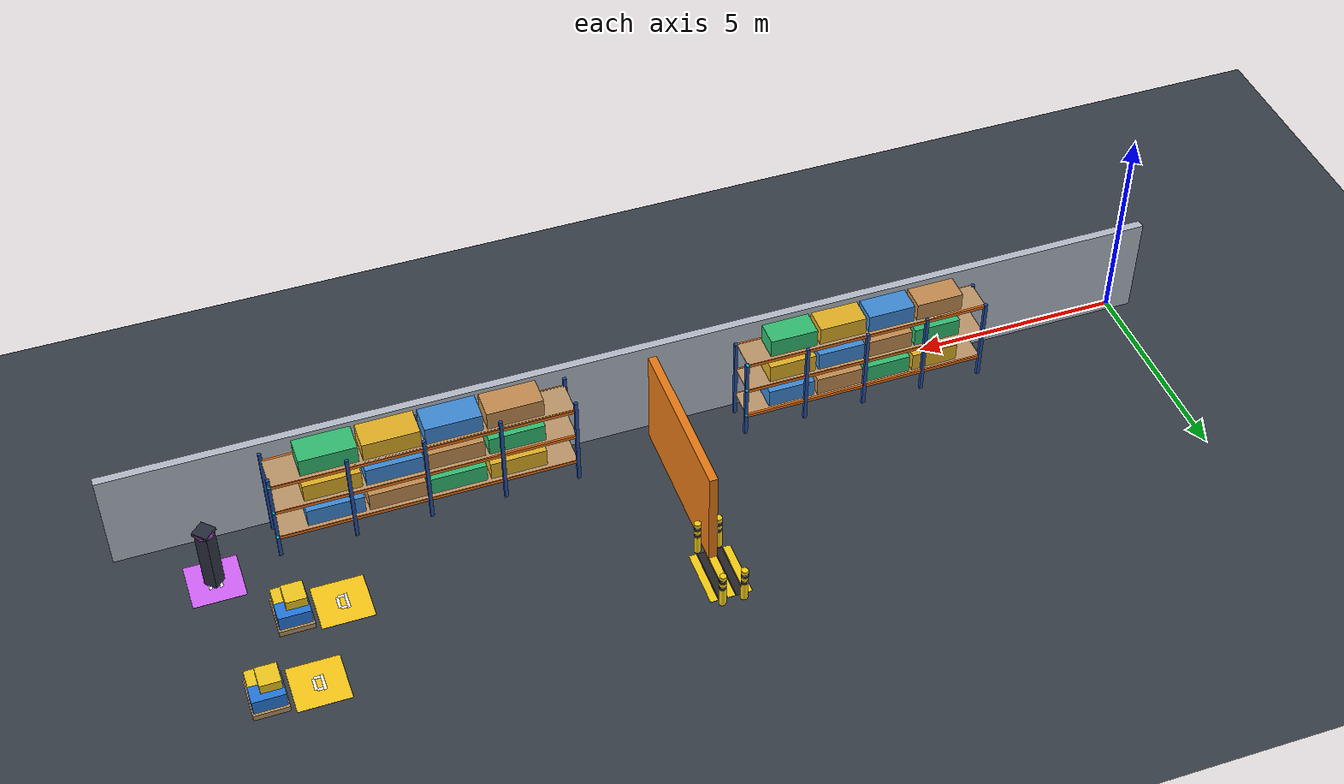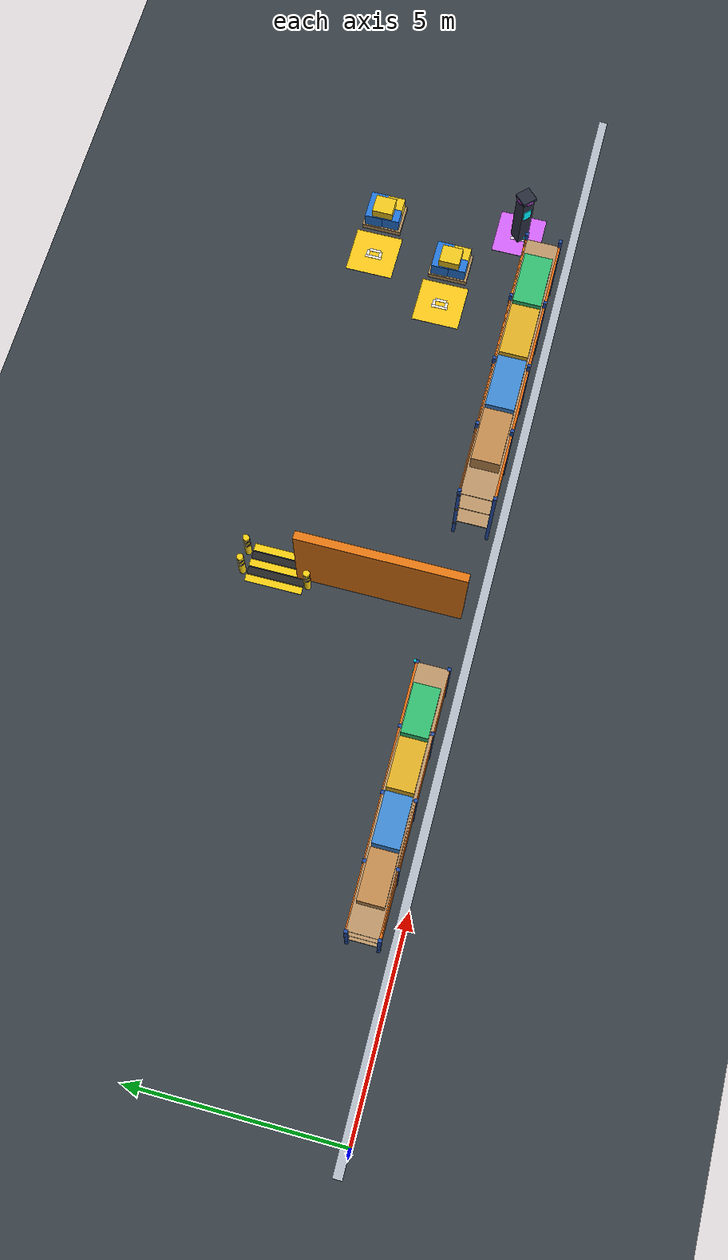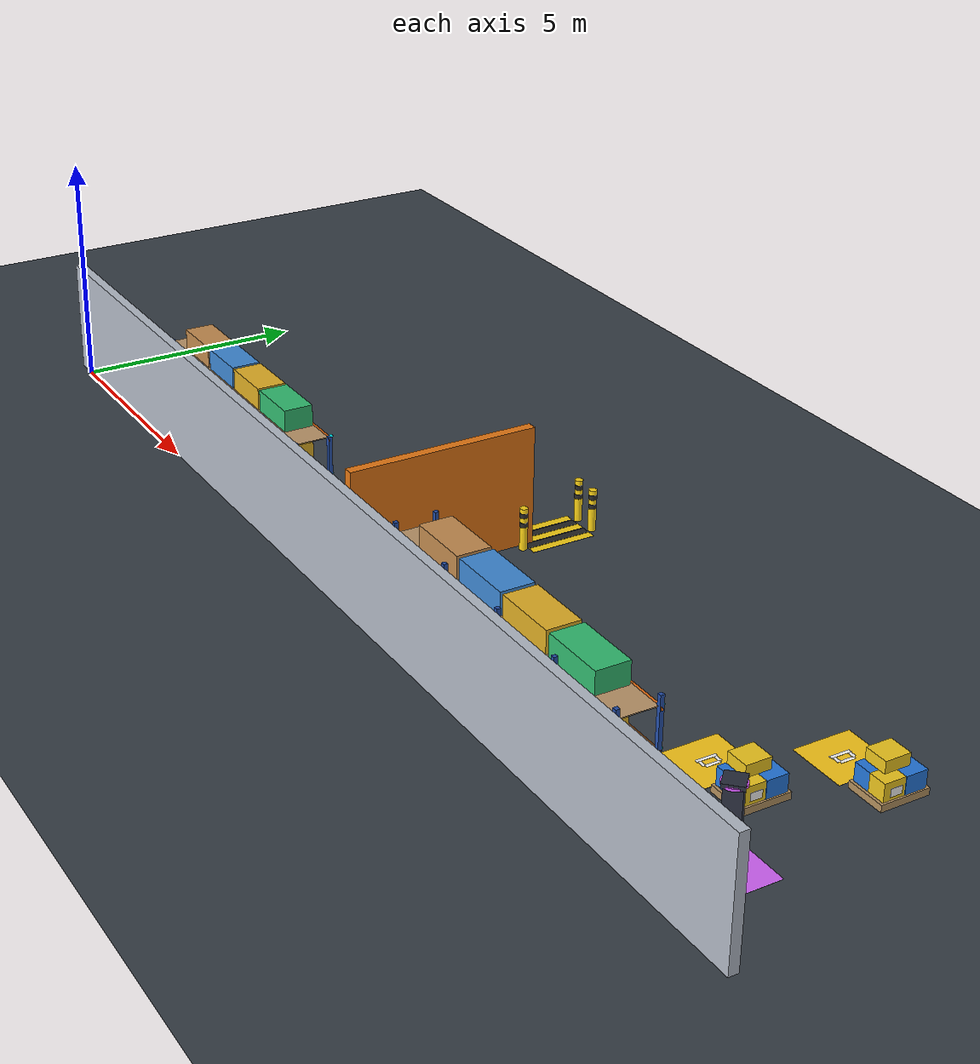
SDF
<sdf version="1.10">
 <world name="warehouse_s4">
  <model name="ground_plane">
   <static>true</static>
   <link name="link">
    <collision name="collision">
     <geometry><plane><normal>0 0 1</normal><size>25 20</size></plane></geometry>
    </collision>
    <visual name="visual">
     <geometry><plane><normal>0 0 1</normal><size>25 20</size></plane></geometry>
     <material>
      <ambient>0.22 0.25 0.28 1</ambient>
      <diffuse>0.22 0.25 0.28 1</diffuse>
      <specular>0.08 0.08 0.08 1</specular>
     </material>
    </visual>
    <pose>12.0 9.5 0 0 0 0</pose>
   </link>
  </model>
  <model name="wall_north">
   <static>true</static>
   <pose>12.0 0.1 1.25 0 0 0</pose>
   <link name="link">
    <collision name="c"><geometry><box><size>25.0 0.2 2.5</size></box></geometry></collision>
    <visual name="v">
     <geometry><box><size>25.0 0.2 2.5</size></box></geometry>
     <material>
      <ambient>0.65 0.68 0.72 1</ambient>
      <diffuse>0.72 0.75 0.80 1</diffuse>
      <specular>0.15 0.15 0.15 1</specular>
     </material>
    </visual>
   </link>
  </model>
  <model name="divider_south">
   <static>true</static>
   <pose>12.0 2.5 1.25 0 0 0</pose>
   <link name="link">
    <collision name="c"><geometry><box><size>0.2 4.0 2.5</size></box></geometry></collision>
    <visual name="v">
     <geometry><box><size>0.2 4.0 2.5</size></box></geometry>
     <material>
      <ambient>0.92 0.48 0.08 1</ambient>
      <diffuse>0.92 0.48 0.08 1</diffuse>
      <specular>0.25 0.25 0.25 1</specular>
     </material>
    </visual>
   </link>
  </model>
  <model name="choke_hazard_south">
   <static>true</static>
   <pose>12.000 5.000 0 0 0 0</pose>
   <link name="link">
    <visual name="stripe_0">
     <pose>-0.400 0 0.004 0 0 0</pose>
     <geometry><box><size>0.18 1.40 0.003</size></box></geometry>
     <material><ambient>0.95 0.75 0.05 1</ambient><diffuse>0.98 0.82 0.08 1</diffuse></material>
    </visual>
    <visual name="stripe_1">
     <pose>-0.200 0 0.004 0 0 0</pose>
     <geometry><box><size>0.18 1.40 0.003</size></box></geometry>
     <material><ambient>0.1 0.1 0.1 1</ambient><diffuse>0.15 0.15 0.15 1</diffuse></material>
    </visual>
    <visual name="stripe_2">
     <pose>0.000 0 0.004 0 0 0</pose>
     <geometry><box><size>0.18 1.40 0.003</size></box></geometry>
     <material><ambient>0.95 0.75 0.05 1</ambient><diffuse>0.98 0.82 0.08 1</diffuse></material>
    </visual>
    <visual name="stripe_3">
     <pose>0.200 0 0.004 0 0 0</pose>
     <geometry><box><size>0.18 1.40 0.003</size></box></geometry>
     <material><ambient>0.1 0.1 0.1 1</ambient><diffuse>0.15 0.15 0.15 1</diffuse></material>
    </visual>
    <visual name="stripe_4">
     <pose>0.400 0 0.004 0 0 0</pose>
     <geometry><box><size>0.18 1.40 0.003</size></box></geometry>
     <material><ambient>0.95 0.75 0.05 1</ambient><diffuse>0.98 0.82 0.08 1</diffuse></material>
    </visual>
   </link>
  </model>
  <model name="bollard_s_nw">
   <static>true</static>
   <pose>11.750 5.800 0.0 0 0 0</pose>
   <link name="link">
    <visual name="post">
     <pose>0 0 0.45 0 0 0</pose>
     <geometry><cylinder><radius>0.08</radius><length>0.90</length></cylinder></geometry>
     <material>
      <ambient>0.95 0.75 0.05 1</ambient>
      <diffuse>0.98 0.82 0.08 1</diffuse>
      <specular>0.5 0.5 0.5 1</specular>
     </material>
    </visual>
    <visual name="stripe1">
     <pose>0 0 0.55 0 0 0</pose>
     <geometry><cylinder><radius>0.082</radius><length>0.10</length></cylinder></geometry>
     <material><ambient>0.1 0.1 0.1 1</ambient><diffuse>0.15 0.15 0.15 1</diffuse></material>
    </visual>
    <visual name="stripe2">
     <pose>0 0 0.75 0 0 0</pose>
     <geometry><cylinder><radius>0.082</radius><length>0.10</length></cylinder></geometry>
     <material><ambient>0.1 0.1 0.1 1</ambient><diffuse>0.15 0.15 0.15 1</diffuse></material>
    </visual>
   </link>
  </model>
  <model name="bollard_s_sw">
   <static>true</static>
   <pose>11.750 4.200 0.0 0 0 0</pose>
   <link name="link">
    <visual name="post">
     <pose>0 0 0.45 0 0 0</pose>
     <geometry><cylinder><radius>0.08</radius><length>0.90</length></cylinder></geometry>
     <material>
      <ambient>0.95 0.75 0.05 1</ambient>
      <diffuse>0.98 0.82 0.08 1</diffuse>
      <specular>0.5 0.5 0.5 1</specular>
     </material>
    </visual>
    <visual name="stripe1">
     <pose>0 0 0.55 0 0 0</pose>
     <geometry><cylinder><radius>0.082</radius><length>0.10</length></cylinder></geometry>
     <material><ambient>0.1 0.1 0.1 1</ambient><diffuse>0.15 0.15 0.15 1</diffuse></material>
    </visual>
    <visual name="stripe2">
     <pose>0 0 0.75 0 0 0</pose>
     <geometry><cylinder><radius>0.082</radius><length>0.10</length></cylinder></geometry>
     <material><ambient>0.1 0.1 0.1 1</ambient><diffuse>0.15 0.15 0.15 1</diffuse></material>
    </visual>
   </link>
  </model>
  <model name="bollard_s_ne">
   <static>true</static>
   <pose>12.250 5.800 0.0 0 0 0</pose>
   <link name="link">
    <visual name="post">
     <pose>0 0 0.45 0 0 0</pose>
     <geometry><cylinder><radius>0.08</radius><length>0.90</length></cylinder></geometry>
     <material>
      <ambient>0.95 0.75 0.05 1</ambient>
      <diffuse>0.98 0.82 0.08 1</diffuse>
      <specular>0.5 0.5 0.5 1</specular>
     </material>
    </visual>
    <visual name="stripe1">
     <pose>0 0 0.55 0 0 0</pose>
     <geometry><cylinder><radius>0.082</radius><length>0.10</length></cylinder></geometry>
     <material><ambient>0.1 0.1 0.1 1</ambient><diffuse>0.15 0.15 0.15 1</diffuse></material>
    </visual>
    <visual name="stripe2">
     <pose>0 0 0.75 0 0 0</pose>
     <geometry><cylinder><radius>0.082</radius><length>0.10</length></cylinder></geometry>
     <material><ambient>0.1 0.1 0.1 1</ambient><diffuse>0.15 0.15 0.15 1</diffuse></material>
    </visual>
   </link>
  </model>
  <model name="bollard_s_se">
   <static>true</static>
   <pose>12.250 4.200 0.0 0 0 0</pose>
   <link name="link">
    <visual name="post">
     <pose>0 0 0.45 0 0 0</pose>
     <geometry><cylinder><radius>0.08</radius><length>0.90</length></cylinder></geometry>
     <material>
      <ambient>0.95 0.75 0.05 1</ambient>
      <diffuse>0.98 0.82 0.08 1</diffuse>
      <specular>0.5 0.5 0.5 1</specular>
     </material>
    </visual>
    <visual name="stripe1">
     <pose>0 0 0.55 0 0 0</pose>
     <geometry><cylinder><radius>0.082</radius><length>0.10</length></cylinder></geometry>
     <material><ambient>0.1 0.1 0.1 1</ambient><diffuse>0.15 0.15 0.15 1</diffuse></material>
    </visual>
    <visual name="stripe2">
     <pose>0 0 0.75 0 0 0</pose>
     <geometry><cylinder><radius>0.082</radius><length>0.10</length></cylinder></geometry>
     <material><ambient>0.1 0.1 0.1 1</ambient><diffuse>0.15 0.15 0.15 1</diffuse></material>
    </visual>
   </link>
  </model>
  <model name="pad_dropoff_1">
   <static>true</static>
   <pose>20.000 3.000 0.003 0 0 0</pose>
   <link name="link">
    <visual name="pad_surface">
     <geometry><box><size>1.10 1.10 0.004</size></box></geometry>
     <material>
      <ambient>0.65 0.35 0.05 1</ambient>
      <diffuse>0.90 0.55 0.08 1</diffuse>
      <specular>0.4 0.4 0.4 1</specular>
     </material>
    </visual>
    <visual name="pad_border">
     <pose>0 0 0.002 0 0 0</pose>
     <geometry><box><size>1.20 1.20 0.002</size></box></geometry>
     <material><ambient>0.98 0.75 0.08 1</ambient><diffuse>1.0 0.80 0.10 1</diffuse></material>
    </visual>
    <visual name="stencil_d_vert">
     <pose>-0.10 0 0.005 0 0 0</pose>
     <geometry><box><size>0.07 0.42 0.003</size></box></geometry>
     <material><ambient>1 1 1 1</ambient><diffuse>1 1 1 1</diffuse><specular>0.5 0.5 0.5 1</specular></material>
    </visual>
    <visual name="stencil_d_top">
     <pose>0.0 0.16 0.005 0 0 0</pose>
     <geometry><box><size>0.15 0.07 0.003</size></box></geometry>
     <material><ambient>1 1 1 1</ambient><diffuse>1 1 1 1</diffuse><specular>0.5 0.5 0.5 1</specular></material>
    </visual>
    <visual name="stencil_d_bot">
     <pose>0.0 -0.16 0.005 0 0 0</pose>
     <geometry><box><size>0.15 0.07 0.003</size></box></geometry>
     <material><ambient>1 1 1 1</ambient><diffuse>1 1 1 1</diffuse><specular>0.5 0.5 0.5 1</specular></material>
    </visual>
    <visual name="stencil_d_right">
     <pose>0.09 0 0.005 0 0 0</pose>
     <geometry><box><size>0.07 0.30 0.003</size></box></geometry>
     <material><ambient>1 1 1 1</ambient><diffuse>1 1 1 1</diffuse><specular>0.5 0.5 0.5 1</specular></material>
    </visual>
   </link>
  </model>
  <model name="cargo_dropoff_1">
   <static>true</static>
   <pose>21.100 3.000 0.0 0 0 0.0000</pose>
   <link name="link">
    <visual name="pallet_base">
     <pose>0 0 0.07 0 0 0</pose>
     <geometry><box><size>0.80 1.00 0.14</size></box></geometry>
     <material><ambient>0.58 0.46 0.30 1</ambient><diffuse>0.72 0.58 0.38 1</diffuse></material>
    </visual>
    <visual name="box_ll">
     <pose>-0.18 -0.22 0.32 0 0 0</pose>
     <geometry><box><size>0.36 0.44 0.36</size></box></geometry>
     <material>
      <ambient>0.12 0.38 0.72 1</ambient>
      <diffuse>0.15 0.48 0.88 1</diffuse>
      <specular>0.3 0.3 0.3 1</specular>
     </material>
    </visual>
    <visual name="box_lr">
     <pose>0.18 -0.22 0.32 0 0 0</pose>
     <geometry><box><size>0.36 0.44 0.36</size></box></geometry>
     <material><ambient>0.88 0.70 0.08 1</ambient><diffuse>0.96 0.80 0.12 1</diffuse></material>
    </visual>
    <visual name="box_top">
     <pose>0 0.22 0.32 0 0 0</pose>
     <geometry><box><size>0.74 0.44 0.36</size></box></geometry>
     <material>
      <ambient>0.12 0.38 0.72 1</ambient>
      <diffuse>0.15 0.48 0.88 1</diffuse>
      <specular>0.3 0.3 0.3 1</specular>
     </material>
    </visual>
    <visual name="box_upper">
     <pose>-0.10 0.0 0.62 0 0 0</pose>
     <geometry><box><size>0.48 0.52 0.24</size></box></geometry>
     <material><ambient>0.88 0.70 0.08 1</ambient><diffuse>0.96 0.80 0.12 1</diffuse></material>
    </visual>
    <visual name="placard">
     <pose>0.402 -0.22 0.32 0 0 0</pose>
     <geometry><box><size>0.005 0.24 0.16</size></box></geometry>
     <material><ambient>0.95 0.95 0.95 1</ambient><diffuse>0.98 0.98 0.98 1</diffuse></material>
    </visual>
   </link>
  </model>
  <model name="pad_dropoff_6">
   <static>true</static>
   <pose>21.000 5.000 0.003 0 0 0</pose>
   <link name="link">
    <visual name="pad_surface">
     <geometry><box><size>1.10 1.10 0.004</size></box></geometry>
     <material>
      <ambient>0.65 0.35 0.05 1</ambient>
      <diffuse>0.90 0.55 0.08 1</diffuse>
      <specular>0.4 0.4 0.4 1</specular>
     </material>
    </visual>
    <visual name="pad_border">
     <pose>0 0 0.002 0 0 0</pose>
     <geometry><box><size>1.20 1.20 0.002</size></box></geometry>
     <material><ambient>0.98 0.75 0.08 1</ambient><diffuse>1.0 0.80 0.10 1</diffuse></material>
    </visual>
    <visual name="stencil_d_vert">
     <pose>-0.10 0 0.005 0 0 0</pose>
     <geometry><box><size>0.07 0.42 0.003</size></box></geometry>
     <material><ambient>1 1 1 1</ambient><diffuse>1 1 1 1</diffuse><specular>0.5 0.5 0.5 1</specular></material>
    </visual>
    <visual name="stencil_d_top">
     <pose>0.0 0.16 0.005 0 0 0</pose>
     <geometry><box><size>0.15 0.07 0.003</size></box></geometry>
     <material><ambient>1 1 1 1</ambient><diffuse>1 1 1 1</diffuse><specular>0.5 0.5 0.5 1</specular></material>
    </visual>
    <visual name="stencil_d_bot">
     <pose>0.0 -0.16 0.005 0 0 0</pose>
     <geometry><box><size>0.15 0.07 0.003</size></box></geometry>
     <material><ambient>1 1 1 1</ambient><diffuse>1 1 1 1</diffuse><specular>0.5 0.5 0.5 1</specular></material>
    </visual>
    <visual name="stencil_d_right">
     <pose>0.09 0 0.005 0 0 0</pose>
     <geometry><box><size>0.07 0.30 0.003</size></box></geometry>
     <material><ambient>1 1 1 1</ambient><diffuse>1 1 1 1</diffuse><specular>0.5 0.5 0.5 1</specular></material>
    </visual>
   </link>
  </model>
  <model name="cargo_dropoff_6">
   <static>true</static>
   <pose>22.100 5.000 0.0 0 0 0.0000</pose>
   <link name="link">
    <visual name="pallet_base">
     <pose>0 0 0.07 0 0 0</pose>
     <geometry><box><size>0.80 1.00 0.14</size></box></geometry>
     <material><ambient>0.58 0.46 0.30 1</ambient><diffuse>0.72 0.58 0.38 1</diffuse></material>
    </visual>
    <visual name="box_ll">
     <pose>-0.18 -0.22 0.32 0 0 0</pose>
     <geometry><box><size>0.36 0.44 0.36</size></box></geometry>
     <material>
      <ambient>0.12 0.38 0.72 1</ambient>
      <diffuse>0.15 0.48 0.88 1</diffuse>
      <specular>0.3 0.3 0.3 1</specular>
     </material>
    </visual>
    <visual name="box_lr">
     <pose>0.18 -0.22 0.32 0 0 0</pose>
     <geometry><box><size>0.36 0.44 0.36</size></box></geometry>
     <material><ambient>0.88 0.70 0.08 1</ambient><diffuse>0.96 0.80 0.12 1</diffuse></material>
    </visual>
    <visual name="box_top">
     <pose>0 0.22 0.32 0 0 0</pose>
     <geometry><box><size>0.74 0.44 0.36</size></box></geometry>
     <material>
      <ambient>0.12 0.38 0.72 1</ambient>
      <diffuse>0.15 0.48 0.88 1</diffuse>
      <specular>0.3 0.3 0.3 1</specular>
     </material>
    </visual>
    <visual name="box_upper">
     <pose>-0.10 0.0 0.62 0 0 0</pose>
     <geometry><box><size>0.48 0.52 0.24</size></box></geometry>
     <material><ambient>0.88 0.70 0.08 1</ambient><diffuse>0.96 0.80 0.12 1</diffuse></material>
    </visual>
    <visual name="placard">
     <pose>0.402 -0.22 0.32 0 0 0</pose>
     <geometry><box><size>0.005 0.24 0.16</size></box></geometry>
     <material><ambient>0.95 0.95 0.95 1</ambient><diffuse>0.98 0.98 0.98 1</diffuse></material>
    </visual>
   </link>
  </model>
  <model name="pad_charge_se">
   <static>true</static>
   <pose>22.500 1.500 0.003 0 0 0</pose>
   <link name="link">
    <visual name="pad_surface">
     <geometry><box><size>1.10 1.10 0.004</size></box></geometry>
     <material>
      <ambient>0.40 0.15 0.65 1</ambient>
      <diffuse>0.65 0.25 0.95 1</diffuse>
      <specular>0.5 0.5 0.5 1</specular>
     </material>
    </visual>
    <visual name="pad_border">
     <pose>0 0 0.002 0 0 0</pose>
     <geometry><box><size>1.20 1.20 0.002</size></box></geometry>
     <material><ambient>0.80 0.35 1.0 1</ambient><diffuse>0.85 0.40 1.0 1</diffuse></material>
    </visual>
    <visual name="stencil_h_left">
     <pose>-0.12 0 0.005 0 0 0</pose>
     <geometry><box><size>0.07 0.42 0.003</size></box></geometry>
     <material><ambient>1 1 1 1</ambient><diffuse>1 1 1 1</diffuse><specular>0.5 0.5 0.5 1</specular></material>
    </visual>
    <visual name="stencil_h_right">
     <pose>0.12 0 0.005 0 0 0</pose>
     <geometry><box><size>0.07 0.42 0.003</size></box></geometry>
     <material><ambient>1 1 1 1</ambient><diffuse>1 1 1 1</diffuse><specular>0.5 0.5 0.5 1</specular></material>
    </visual>
    <visual name="stencil_h_mid">
     <pose>0 0 0.005 0 0 0</pose>
     <geometry><box><size>0.22 0.07 0.003</size></box></geometry>
     <material><ambient>1 1 1 1</ambient><diffuse>1 1 1 1</diffuse><specular>0.5 0.5 0.5 1</specular></material>
    </visual>
   </link>
  </model>
  <model name="kiosk_charge_se">
   <static>true</static>
   <pose>22.500 1.500 0.0 0 0 -2.3560</pose>
   <link name="link">
    <visual name="pillar">
     <pose>0 0 0.80 0 0 0</pose>
     <geometry><box><size>0.32 0.32 1.60</size></box></geometry>
     <material>
      <ambient>0.12 0.14 0.18 1</ambient>
      <diffuse>0.16 0.18 0.24 1</diffuse>
      <specular>0.4 0.4 0.4 1</specular>
     </material>
    </visual>
    <visual name="cap">
     <pose>0 0 1.64 0 0 0</pose>
     <geometry><box><size>0.38 0.38 0.08</size></box></geometry>
     <material>
      <ambient>0.12 0.14 0.18 1</ambient>
      <diffuse>0.16 0.18 0.24 1</diffuse>
      <specular>0.4 0.4 0.4 1</specular>
     </material>
    </visual>
    <visual name="halo_ring">
     <pose>0 0 1.61 0 0 0</pose>
     <geometry><cylinder><radius>0.22</radius><length>0.05</length></cylinder></geometry>
     <material>
      <ambient>0.75 0.25 0.95 1</ambient>
      <diffuse>0.85 0.35 1.0 1</diffuse>
      <specular>1 1 1 1</specular>
     </material>
    </visual>
    <visual name="screen">
     <pose>0.162 0 1.10 0 0 0</pose>
     <geometry><box><size>0.008 0.22 0.32</size></box></geometry>
     <material>
      <ambient>0.0 0.85 1.0 1</ambient>
      <diffuse>0.0 0.95 1.0 1</diffuse>
      <specular>0.8 0.8 0.8 1</specular>
     </material>
    </visual>
   </link>
  </model>
  <model name="rack_right_south">
   <static>true</static>
   <pose>17.500 0.800 0.000 0 0 0.0000</pose>
   <link name="link">
    <visual name="post_1">
     <pose>-3.460 -0.410 1.200 0 0 0</pose>
     <geometry><box><size>0.08 0.08 2.400</size></box></geometry>
     <material>
      <ambient>0.10 0.20 0.45 1</ambient>
      <diffuse>0.15 0.32 0.68 1</diffuse>
      <specular>0.3 0.3 0.3 1</specular>
     </material>
    </visual>
    <visual name="post_2">
     <pose>-3.460 0.410 1.200 0 0 0</pose>
     <geometry><box><size>0.08 0.08 2.400</size></box></geometry>
     <material>
      <ambient>0.10 0.20 0.45 1</ambient>
      <diffuse>0.15 0.32 0.68 1</diffuse>
      <specular>0.3 0.3 0.3 1</specular>
     </material>
    </visual>
    <visual name="post_3">
     <pose>3.460 -0.410 1.200 0 0 0</pose>
     <geometry><box><size>0.08 0.08 2.400</size></box></geometry>
     <material>
      <ambient>0.10 0.20 0.45 1</ambient>
      <diffuse>0.15 0.32 0.68 1</diffuse>
      <specular>0.3 0.3 0.3 1</specular>
     </material>
    </visual>
    <visual name="post_4">
     <pose>3.460 0.410 1.200 0 0 0</pose>
     <geometry><box><size>0.08 0.08 2.400</size></box></geometry>
     <material>
      <ambient>0.10 0.20 0.45 1</ambient>
      <diffuse>0.15 0.32 0.68 1</diffuse>
      <specular>0.3 0.3 0.3 1</specular>
     </material>
    </visual>
    <visual name="post_5">
     <pose>0.000 -0.410 1.200 0 0 0</pose>
     <geometry><box><size>0.08 0.08 2.400</size></box></geometry>
     <material>
      <ambient>0.10 0.20 0.45 1</ambient>
      <diffuse>0.15 0.32 0.68 1</diffuse>
      <specular>0.3 0.3 0.3 1</specular>
     </material>
    </visual>
    <visual name="post_6">
     <pose>0.000 0.410 1.200 0 0 0</pose>
     <geometry><box><size>0.08 0.08 2.400</size></box></geometry>
     <material>
      <ambient>0.10 0.20 0.45 1</ambient>
      <diffuse>0.15 0.32 0.68 1</diffuse>
      <specular>0.3 0.3 0.3 1</specular>
     </material>
    </visual>
    <visual name="post_7">
     <pose>-1.730 -0.410 1.200 0 0 0</pose>
     <geometry><box><size>0.08 0.08 2.400</size></box></geometry>
     <material>
      <ambient>0.10 0.20 0.45 1</ambient>
      <diffuse>0.15 0.32 0.68 1</diffuse>
      <specular>0.3 0.3 0.3 1</specular>
     </material>
    </visual>
    <visual name="post_8">
     <pose>-1.730 0.410 1.200 0 0 0</pose>
     <geometry><box><size>0.08 0.08 2.400</size></box></geometry>
     <material>
      <ambient>0.10 0.20 0.45 1</ambient>
      <diffuse>0.15 0.32 0.68 1</diffuse>
      <specular>0.3 0.3 0.3 1</specular>
     </material>
    </visual>
    <visual name="post_9">
     <pose>1.730 -0.410 1.200 0 0 0</pose>
     <geometry><box><size>0.08 0.08 2.400</size></box></geometry>
     <material>
      <ambient>0.10 0.20 0.45 1</ambient>
      <diffuse>0.15 0.32 0.68 1</diffuse>
      <specular>0.3 0.3 0.3 1</specular>
     </material>
    </visual>
    <visual name="post_10">
     <pose>1.730 0.410 1.200 0 0 0</pose>
     <geometry><box><size>0.08 0.08 2.400</size></box></geometry>
     <material>
      <ambient>0.10 0.20 0.45 1</ambient>
      <diffuse>0.15 0.32 0.68 1</diffuse>
      <specular>0.3 0.3 0.3 1</specular>
     </material>
    </visual>
    <visual name="beam_front_1">
     <pose>0 -0.410 0.550 0 0 0</pose>
     <geometry><box><size>7.000 0.05 0.08</size></box></geometry>
     <material>
      <ambient>0.85 0.35 0.05 1</ambient>
      <diffuse>0.95 0.45 0.08 1</diffuse>
      <specular>0.2 0.2 0.2 1</specular>
     </material>
    </visual>
    <visual name="beam_back_1">
     <pose>0 0.410 0.550 0 0 0</pose>
     <geometry><box><size>7.000 0.05 0.08</size></box></geometry>
     <material>
      <ambient>0.85 0.35 0.05 1</ambient>
      <diffuse>0.95 0.45 0.08 1</diffuse>
      <specular>0.2 0.2 0.2 1</specular>
     </material>
    </visual>
    <visual name="deck_1">
     <pose>0 0 0.580 0 0 0</pose>
     <geometry><box><size>6.900 0.840 0.02</size></box></geometry>
     <material>
      <ambient>0.60 0.48 0.32 1</ambient>
      <diffuse>0.75 0.60 0.42 1</diffuse>
      <specular>0.1 0.1 0.1 1</specular>
     </material>
    </visual>
    <visual name="cargo_t1_b1">
     <pose>-2.100 0 0.825 0 0 0</pose>
     <geometry><box><size>1.312 0.675 0.450</size></box></geometry>
     <material><ambient>0.75 0.55 0.10 1</ambient><diffuse>0.90 0.70 0.15 1</diffuse></material>
    </visual>
    <visual name="cargo_t1_b2">
     <pose>-0.700 0 0.825 0 0 0</pose>
     <geometry><box><size>1.312 0.675 0.450</size></box></geometry>
     <material><ambient>0.15 0.60 0.35 1</ambient><diffuse>0.20 0.75 0.45 1</diffuse></material>
    </visual>
    <visual name="cargo_t1_b3">
     <pose>0.700 0 0.825 0 0 0</pose>
     <geometry><box><size>1.312 0.675 0.450</size></box></geometry>
     <material><ambient>0.65 0.45 0.25 1</ambient><diffuse>0.78 0.56 0.32 1</diffuse></material>
    </visual>
    <visual name="cargo_t1_b4">
     <pose>2.100 0 0.825 0 0 0</pose>
     <geometry><box><size>1.312 0.675 0.450</size></box></geometry>
     <material><ambient>0.20 0.45 0.70 1</ambient><diffuse>0.25 0.55 0.85 1</diffuse></material>
    </visual>
    <visual name="led_indicator_1">
     <pose>3.460 0.450 0.600 0 0 0</pose>
     <geometry><sphere><radius>0.035</radius></sphere></geometry>
     <material>
      <ambient>0.0 0.85 1.0 1</ambient>
      <diffuse>0.0 0.95 1.0 1</diffuse>
      <specular>1 1 1 1</specular>
     </material>
    </visual>
    <visual name="beam_front_2">
     <pose>0 -0.410 1.350 0 0 0</pose>
     <geometry><box><size>7.000 0.05 0.08</size></box></geometry>
     <material>
      <ambient>0.85 0.35 0.05 1</ambient>
      <diffuse>0.95 0.45 0.08 1</diffuse>
      <specular>0.2 0.2 0.2 1</specular>
     </material>
    </visual>
    <visual name="beam_back_2">
     <pose>0 0.410 1.350 0 0 0</pose>
     <geometry><box><size>7.000 0.05 0.08</size></box></geometry>
     <material>
      <ambient>0.85 0.35 0.05 1</ambient>
      <diffuse>0.95 0.45 0.08 1</diffuse>
      <specular>0.2 0.2 0.2 1</specular>
     </material>
    </visual>
    <visual name="deck_2">
     <pose>0 0 1.380 0 0 0</pose>
     <geometry><box><size>6.900 0.840 0.02</size></box></geometry>
     <material>
      <ambient>0.60 0.48 0.32 1</ambient>
      <diffuse>0.75 0.60 0.42 1</diffuse>
      <specular>0.1 0.1 0.1 1</specular>
     </material>
    </visual>
    <visual name="cargo_t2_b1">
     <pose>-2.100 0 1.625 0 0 0</pose>
     <geometry><box><size>1.312 0.675 0.450</size></box></geometry>
     <material><ambient>0.15 0.60 0.35 1</ambient><diffuse>0.20 0.75 0.45 1</diffuse></material>
    </visual>
    <visual name="cargo_t2_b2">
     <pose>-0.700 0 1.625 0 0 0</pose>
     <geometry><box><size>1.312 0.675 0.450</size></box></geometry>
     <material><ambient>0.65 0.45 0.25 1</ambient><diffuse>0.78 0.56 0.32 1</diffuse></material>
    </visual>
    <visual name="cargo_t2_b3">
     <pose>0.700 0 1.625 0 0 0</pose>
     <geometry><box><size>1.312 0.675 0.450</size></box></geometry>
     <material><ambient>0.20 0.45 0.70 1</ambient><diffuse>0.25 0.55 0.85 1</diffuse></material>
    </visual>
    <visual name="cargo_t2_b4">
     <pose>2.100 0 1.625 0 0 0</pose>
     <geometry><box><size>1.312 0.675 0.450</size></box></geometry>
     <material><ambient>0.75 0.55 0.10 1</ambient><diffuse>0.90 0.70 0.15 1</diffuse></material>
    </visual>
    <visual name="led_indicator_2">
     <pose>3.460 0.450 1.400 0 0 0</pose>
     <geometry><sphere><radius>0.035</radius></sphere></geometry>
     <material>
      <ambient>0.0 0.85 1.0 1</ambient>
      <diffuse>0.0 0.95 1.0 1</diffuse>
      <specular>1 1 1 1</specular>
     </material>
    </visual>
    <visual name="beam_front_3">
     <pose>0 -0.410 2.150 0 0 0</pose>
     <geometry><box><size>7.000 0.05 0.08</size></box></geometry>
     <material>
      <ambient>0.85 0.35 0.05 1</ambient>
      <diffuse>0.95 0.45 0.08 1</diffuse>
      <specular>0.2 0.2 0.2 1</specular>
     </material>
    </visual>
    <visual name="beam_back_3">
     <pose>0 0.410 2.150 0 0 0</pose>
     <geometry><box><size>7.000 0.05 0.08</size></box></geometry>
     <material>
      <ambient>0.85 0.35 0.05 1</ambient>
      <diffuse>0.95 0.45 0.08 1</diffuse>
      <specular>0.2 0.2 0.2 1</specular>
     </material>
    </visual>
    <visual name="deck_3">
     <pose>0 0 2.180 0 0 0</pose>
     <geometry><box><size>6.900 0.840 0.02</size></box></geometry>
     <material>
      <ambient>0.60 0.48 0.32 1</ambient>
      <diffuse>0.75 0.60 0.42 1</diffuse>
      <specular>0.1 0.1 0.1 1</specular>
     </material>
    </visual>
    <visual name="cargo_t3_b1">
     <pose>-2.100 0 2.425 0 0 0</pose>
     <geometry><box><size>1.312 0.675 0.450</size></box></geometry>
     <material><ambient>0.65 0.45 0.25 1</ambient><diffuse>0.78 0.56 0.32 1</diffuse></material>
    </visual>
    <visual name="cargo_t3_b2">
     <pose>-0.700 0 2.425 0 0 0</pose>
     <geometry><box><size>1.312 0.675 0.450</size></box></geometry>
     <material><ambient>0.20 0.45 0.70 1</ambient><diffuse>0.25 0.55 0.85 1</diffuse></material>
    </visual>
    <visual name="cargo_t3_b3">
     <pose>0.700 0 2.425 0 0 0</pose>
     <geometry><box><size>1.312 0.675 0.450</size></box></geometry>
     <material><ambient>0.75 0.55 0.10 1</ambient><diffuse>0.90 0.70 0.15 1</diffuse></material>
    </visual>
    <visual name="cargo_t3_b4">
     <pose>2.100 0 2.425 0 0 0</pose>
     <geometry><box><size>1.312 0.675 0.450</size></box></geometry>
     <material><ambient>0.15 0.60 0.35 1</ambient><diffuse>0.20 0.75 0.45 1</diffuse></material>
    </visual>
    <visual name="led_indicator_3">
     <pose>3.460 0.450 2.200 0 0 0</pose>
     <geometry><sphere><radius>0.035</radius></sphere></geometry>
     <material>
      <ambient>0.0 0.85 1.0 1</ambient>
      <diffuse>0.0 0.95 1.0 1</diffuse>
      <specular>1 1 1 1</specular>
     </material>
    </visual>
   </link>
  </model>
  <model name="rack_left_south">
   <static>true</static>
   <pose>7.000 0.800 0.000 0 0 0.0000</pose>
   <link name="link">
    <visual name="post_1">
     <pose>-2.960 -0.360 1.100 0 0 0</pose>
     <geometry><box><size>0.08 0.08 2.200</size></box></geometry>
     <material>
      <ambient>0.10 0.20 0.45 1</ambient>
      <diffuse>0.15 0.32 0.68 1</diffuse>
      <specular>0.3 0.3 0.3 1</specular>
     </material>
    </visual>
    <visual name="post_2">
     <pose>-2.960 0.360 1.100 0 0 0</pose>
     <geometry><box><size>0.08 0.08 2.200</size></box></geometry>
     <material>
      <ambient>0.10 0.20 0.45 1</ambient>
      <diffuse>0.15 0.32 0.68 1</diffuse>
      <specular>0.3 0.3 0.3 1</specular>
     </material>
    </visual>
    <visual name="post_3">
     <pose>2.960 -0.360 1.100 0 0 0</pose>
     <geometry><box><size>0.08 0.08 2.200</size></box></geometry>
     <material>
      <ambient>0.10 0.20 0.45 1</ambient>
      <diffuse>0.15 0.32 0.68 1</diffuse>
      <specular>0.3 0.3 0.3 1</specular>
     </material>
    </visual>
    <visual name="post_4">
     <pose>2.960 0.360 1.100 0 0 0</pose>
     <geometry><box><size>0.08 0.08 2.200</size></box></geometry>
     <material>
      <ambient>0.10 0.20 0.45 1</ambient>
      <diffuse>0.15 0.32 0.68 1</diffuse>
      <specular>0.3 0.3 0.3 1</specular>
     </material>
    </visual>
    <visual name="post_5">
     <pose>0.000 -0.360 1.100 0 0 0</pose>
     <geometry><box><size>0.08 0.08 2.200</size></box></geometry>
     <material>
      <ambient>0.10 0.20 0.45 1</ambient>
      <diffuse>0.15 0.32 0.68 1</diffuse>
      <specular>0.3 0.3 0.3 1</specular>
     </material>
    </visual>
    <visual name="post_6">
     <pose>0.000 0.360 1.100 0 0 0</pose>
     <geometry><box><size>0.08 0.08 2.200</size></box></geometry>
     <material>
      <ambient>0.10 0.20 0.45 1</ambient>
      <diffuse>0.15 0.32 0.68 1</diffuse>
      <specular>0.3 0.3 0.3 1</specular>
     </material>
    </visual>
    <visual name="post_7">
     <pose>-1.480 -0.360 1.100 0 0 0</pose>
     <geometry><box><size>0.08 0.08 2.200</size></box></geometry>
     <material>
      <ambient>0.10 0.20 0.45 1</ambient>
      <diffuse>0.15 0.32 0.68 1</diffuse>
      <specular>0.3 0.3 0.3 1</specular>
     </material>
    </visual>
    <visual name="post_8">
     <pose>-1.480 0.360 1.100 0 0 0</pose>
     <geometry><box><size>0.08 0.08 2.200</size></box></geometry>
     <material>
      <ambient>0.10 0.20 0.45 1</ambient>
      <diffuse>0.15 0.32 0.68 1</diffuse>
      <specular>0.3 0.3 0.3 1</specular>
     </material>
    </visual>
    <visual name="post_9">
     <pose>1.480 -0.360 1.100 0 0 0</pose>
     <geometry><box><size>0.08 0.08 2.200</size></box></geometry>
     <material>
      <ambient>0.10 0.20 0.45 1</ambient>
      <diffuse>0.15 0.32 0.68 1</diffuse>
      <specular>0.3 0.3 0.3 1</specular>
     </material>
    </visual>
    <visual name="post_10">
     <pose>1.480 0.360 1.100 0 0 0</pose>
     <geometry><box><size>0.08 0.08 2.200</size></box></geometry>
     <material>
      <ambient>0.10 0.20 0.45 1</ambient>
      <diffuse>0.15 0.32 0.68 1</diffuse>
      <specular>0.3 0.3 0.3 1</specular>
     </material>
    </visual>
    <visual name="beam_front_1">
     <pose>0 -0.360 0.550 0 0 0</pose>
     <geometry><box><size>6.000 0.05 0.08</size></box></geometry>
     <material>
      <ambient>0.85 0.35 0.05 1</ambient>
      <diffuse>0.95 0.45 0.08 1</diffuse>
      <specular>0.2 0.2 0.2 1</specular>
     </material>
    </visual>
    <visual name="beam_back_1">
     <pose>0 0.360 0.550 0 0 0</pose>
     <geometry><box><size>6.000 0.05 0.08</size></box></geometry>
     <material>
      <ambient>0.85 0.35 0.05 1</ambient>
      <diffuse>0.95 0.45 0.08 1</diffuse>
      <specular>0.2 0.2 0.2 1</specular>
     </material>
    </visual>
    <visual name="deck_1">
     <pose>0 0 0.580 0 0 0</pose>
     <geometry><box><size>5.900 0.740 0.02</size></box></geometry>
     <material>
      <ambient>0.60 0.48 0.32 1</ambient>
      <diffuse>0.75 0.60 0.42 1</diffuse>
      <specular>0.1 0.1 0.1 1</specular>
     </material>
    </visual>
    <visual name="cargo_t1_b1">
     <pose>-1.800 0 0.825 0 0 0</pose>
     <geometry><box><size>1.125 0.600 0.450</size></box></geometry>
     <material><ambient>0.75 0.55 0.10 1</ambient><diffuse>0.90 0.70 0.15 1</diffuse></material>
    </visual>
    <visual name="cargo_t1_b2">
     <pose>-0.600 0 0.825 0 0 0</pose>
     <geometry><box><size>1.125 0.600 0.450</size></box></geometry>
     <material><ambient>0.15 0.60 0.35 1</ambient><diffuse>0.20 0.75 0.45 1</diffuse></material>
    </visual>
    <visual name="cargo_t1_b3">
     <pose>0.600 0 0.825 0 0 0</pose>
     <geometry><box><size>1.125 0.600 0.450</size></box></geometry>
     <material><ambient>0.65 0.45 0.25 1</ambient><diffuse>0.78 0.56 0.32 1</diffuse></material>
    </visual>
    <visual name="cargo_t1_b4">
     <pose>1.800 0 0.825 0 0 0</pose>
     <geometry><box><size>1.125 0.600 0.450</size></box></geometry>
     <material><ambient>0.20 0.45 0.70 1</ambient><diffuse>0.25 0.55 0.85 1</diffuse></material>
    </visual>
    <visual name="led_indicator_1">
     <pose>2.960 0.400 0.600 0 0 0</pose>
     <geometry><sphere><radius>0.035</radius></sphere></geometry>
     <material>
      <ambient>0.0 0.85 1.0 1</ambient>
      <diffuse>0.0 0.95 1.0 1</diffuse>
      <specular>1 1 1 1</specular>
     </material>
    </visual>
    <visual name="beam_front_2">
     <pose>0 -0.360 1.350 0 0 0</pose>
     <geometry><box><size>6.000 0.05 0.08</size></box></geometry>
     <material>
      <ambient>0.85 0.35 0.05 1</ambient>
      <diffuse>0.95 0.45 0.08 1</diffuse>
      <specular>0.2 0.2 0.2 1</specular>
     </material>
    </visual>
    <visual name="beam_back_2">
     <pose>0 0.360 1.350 0 0 0</pose>
     <geometry><box><size>6.000 0.05 0.08</size></box></geometry>
     <material>
      <ambient>0.85 0.35 0.05 1</ambient>
      <diffuse>0.95 0.45 0.08 1</diffuse>
      <specular>0.2 0.2 0.2 1</specular>
     </material>
    </visual>
    <visual name="deck_2">
     <pose>0 0 1.380 0 0 0</pose>
     <geometry><box><size>5.900 0.740 0.02</size></box></geometry>
     <material>
      <ambient>0.60 0.48 0.32 1</ambient>
      <diffuse>0.75 0.60 0.42 1</diffuse>
      <specular>0.1 0.1 0.1 1</specular>
     </material>
    </visual>
    <visual name="cargo_t2_b1">
     <pose>-1.800 0 1.625 0 0 0</pose>
     <geometry><box><size>1.125 0.600 0.450</size></box></geometry>
     <material><ambient>0.15 0.60 0.35 1</ambient><diffuse>0.20 0.75 0.45 1</diffuse></material>
    </visual>
    <visual name="cargo_t2_b2">
     <pose>-0.600 0 1.625 0 0 0</pose>
     <geometry><box><size>1.125 0.600 0.450</size></box></geometry>
     <material><ambient>0.65 0.45 0.25 1</ambient><diffuse>0.78 0.56 0.32 1</diffuse></material>
    </visual>
    <visual name="cargo_t2_b3">
     <pose>0.600 0 1.625 0 0 0</pose>
     <geometry><box><size>1.125 0.600 0.450</size></box></geometry>
     <material><ambient>0.20 0.45 0.70 1</ambient><diffuse>0.25 0.55 0.85 1</diffuse></material>
    </visual>
    <visual name="cargo_t2_b4">
     <pose>1.800 0 1.625 0 0 0</pose>
     <geometry><box><size>1.125 0.600 0.450</size></box></geometry>
     <material><ambient>0.75 0.55 0.10 1</ambient><diffuse>0.90 0.70 0.15 1</diffuse></material>
    </visual>
    <visual name="led_indicator_2">
     <pose>2.960 0.400 1.400 0 0 0</pose>
     <geometry><sphere><radius>0.035</radius></sphere></geometry>
     <material>
      <ambient>0.0 0.85 1.0 1</ambient>
      <diffuse>0.0 0.95 1.0 1</diffuse>
      <specular>1 1 1 1</specular>
     </material>
    </visual>
    <visual name="beam_front_3">
     <pose>0 -0.360 2.150 0 0 0</pose>
     <geometry><box><size>6.000 0.05 0.08</size></box></geometry>
     <material>
      <ambient>0.85 0.35 0.05 1</ambient>
      <diffuse>0.95 0.45 0.08 1</diffuse>
      <specular>0.2 0.2 0.2 1</specular>
     </material>
    </visual>
    <visual name="beam_back_3">
     <pose>0 0.360 2.150 0 0 0</pose>
     <geometry><box><size>6.000 0.05 0.08</size></box></geometry>
     <material>
      <ambient>0.85 0.35 0.05 1</ambient>
      <diffuse>0.95 0.45 0.08 1</diffuse>
      <specular>0.2 0.2 0.2 1</specular>
     </material>
    </visual>
    <visual name="deck_3">
     <pose>0 0 2.180 0 0 0</pose>
     <geometry><box><size>5.900 0.740 0.02</size></box></geometry>
     <material>
      <ambient>0.60 0.48 0.32 1</ambient>
      <diffuse>0.75 0.60 0.42 1</diffuse>
      <specular>0.1 0.1 0.1 1</specular>
     </material>
    </visual>
    <visual name="cargo_t3_b1">
     <pose>-1.800 0 2.425 0 0 0</pose>
     <geometry><box><size>1.125 0.600 0.450</size></box></geometry>
     <material><ambient>0.65 0.45 0.25 1</ambient><diffuse>0.78 0.56 0.32 1</diffuse></material>
    </visual>
    <visual name="cargo_t3_b2">
     <pose>-0.600 0 2.425 0 0 0</pose>
     <geometry><box><size>1.125 0.600 0.450</size></box></geometry>
     <material><ambient>0.20 0.45 0.70 1</ambient><diffuse>0.25 0.55 0.85 1</diffuse></material>
    </visual>
    <visual name="cargo_t3_b3">
     <pose>0.600 0 2.425 0 0 0</pose>
     <geometry><box><size>1.125 0.600 0.450</size></box></geometry>
     <material><ambient>0.75 0.55 0.10 1</ambient><diffuse>0.90 0.70 0.15 1</diffuse></material>
    </visual>
    <visual name="cargo_t3_b4">
     <pose>1.800 0 2.425 0 0 0</pose>
     <geometry><box><size>1.125 0.600 0.450</size></box></geometry>
     <material><ambient>0.15 0.60 0.35 1</ambient><diffuse>0.20 0.75 0.45 1</diffuse></material>
    </visual>
    <visual name="led_indicator_3">
     <pose>2.960 0.400 2.200 0 0 0</pose>
     <geometry><sphere><radius>0.035</radius></sphere></geometry>
     <material>
      <ambient>0.0 0.85 1.0 1</ambient>
      <diffuse>0.0 0.95 1.0 1</diffuse>
      <specular>1 1 1 1</specular>
     </material>
    </visual>
   </link>
  </model>
 </world>
</sdf>
